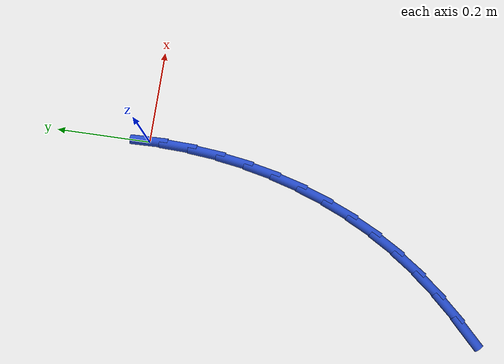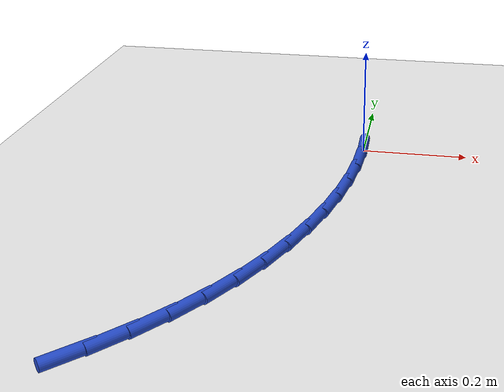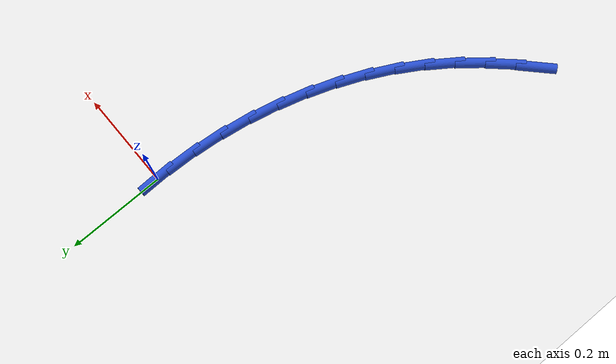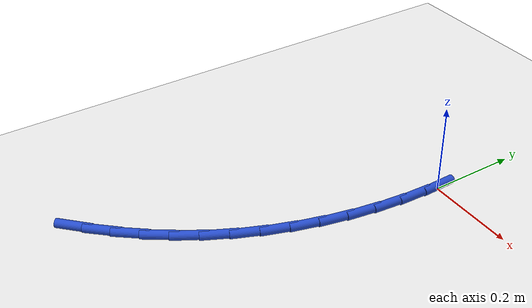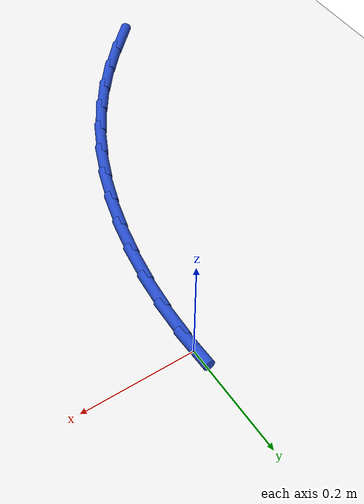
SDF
<sdf version="1.6">
 <world name="default">
  <model name="ground_plane">
   <static>1</static>
   <link name="link">
    <collision name="collision">
     <geometry><plane><normal>0 0 1</normal><size>100 100</size></plane></geometry>
     <surface><friction><ode><mu>100</mu><mu2>50</mu2></ode></friction></surface>
    </collision>
    <visual name="visual">
     <cast_shadows>0</cast_shadows>
     <geometry><plane><normal>0 0 1</normal><size>100 100</size></plane></geometry>
     <material>
      <script><uri>file://media/materials/scripts/gazebo.material</uri><name>Gazebo/WhiteGlow</name></script>
     </material>
    </visual>
   </link>
  </model>
  <model name="line">
   <link name="link_0">
    <pose>-1.3877787807814457e-17 8.326672684688674e-17 0.01 0 1.57 -1.5485615625019138</pose>
    <collision name="collision">
     <geometry><cylinder><radius>0.01</radius><length>0.08</length></cylinder></geometry>
    </collision>
    <visual name="visual">
     <material>
      <script><name>Gazebo/Blue</name><uri>file://media/materials/scripts/gazebo.material</uri></script>
     </material>
     <geometry><cylinder><radius>0.01</radius><length>0.08</length></cylinder></geometry>
    </visual>
   </link>
   <link name="link_97">
    <pose>-0.30045868870790027 -0.7025492755957794 0.01 0 1.57 0.771179600568469</pose>
    <collision name="collision">
     <geometry><cylinder><radius>0.01</radius><length>0.08</length></cylinder></geometry>
    </collision>
    <visual name="visual">
     <material>
      <script><name>Gazebo/Blue</name><uri>file://media/materials/scripts/gazebo.material</uri></script>
     </material>
     <geometry><cylinder><radius>0.01</radius><length>0.08</length></cylinder></geometry>
    </visual>
   </link>
   <link name="link_98">
    <pose>-0.25764126849017915 -0.6609324696373565 0.01 0 1.57 0.8292228284273512</pose>
    <collision name="collision">
     <geometry><cylinder><radius>0.01</radius><length>0.08</length></cylinder></geometry>
    </collision>
    <visual name="visual">
     <material>
      <script><name>Gazebo/Blue</name><uri>file://media/materials/scripts/gazebo.material</uri></script>
     </material>
     <geometry><cylinder><radius>0.01</radius><length>0.08</length></cylinder></geometry>
    </visual>
   </link>
   <link name="link_99">
    <pose>-0.21754674251556816 -0.6171601525327214 0.01 0 1.57 0.8936201381334876</pose>
    <collision name="collision">
     <geometry><cylinder><radius>0.01</radius><length>0.08</length></cylinder></geometry>
    </collision>
    <visual name="visual">
     <material>
      <script><name>Gazebo/Blue</name><uri>file://media/materials/scripts/gazebo.material</uri></script>
     </material>
     <geometry><cylinder><radius>0.01</radius><length>0.08</length></cylinder></geometry>
    </visual>
   </link>
   <link name="link_100">
    <pose>-0.1804605179011166 -0.5710330997433906 0.01 0 1.57 0.963929544307104</pose>
    <collision name="collision">
     <geometry><cylinder><radius>0.01</radius><length>0.08</length></cylinder></geometry>
    </collision>
    <visual name="visual">
     <material>
      <script><name>Gazebo/Blue</name><uri>file://media/materials/scripts/gazebo.material</uri></script>
     </material>
     <geometry><cylinder><radius>0.01</radius><length>0.08</length></cylinder></geometry>
    </visual>
   </link>
   <link name="link_101">
    <pose>-0.14666568398035693 -0.5223559805261405 0.01 0 1.57 1.0363469562477186</pose>
    <collision name="collision">
     <geometry><cylinder><radius>0.01</radius><length>0.08</length></cylinder></geometry>
    </collision>
    <visual name="visual">
     <material>
      <script><name>Gazebo/Blue</name><uri>file://media/materials/scripts/gazebo.material</uri></script>
     </material>
     <geometry><cylinder><radius>0.01</radius><length>0.08</length></cylinder></geometry>
    </visual>
   </link>
   <link name="link_102">
    <pose>-0.11633646332037781 -0.47111635649830297 0.01 0 1.57 1.1061892917950138</pose>
    <collision name="collision">
     <geometry><cylinder><radius>0.01</radius><length>0.08</length></cylinder></geometry>
    </collision>
    <visual name="visual">
     <material>
      <script><name>Gazebo/Blue</name><uri>file://media/materials/scripts/gazebo.material</uri></script>
     </material>
     <geometry><cylinder><radius>0.01</radius><length>0.08</length></cylinder></geometry>
    </visual>
   </link>
   <link name="link_103">
    <pose>-0.08949372945866947 -0.4175594102843318 0.01 0 1.57 1.1733082896835414</pose>
    <collision name="collision">
     <geometry><cylinder><radius>0.01</radius><length>0.08</length></cylinder></geometry>
    </collision>
    <visual name="visual">
     <material>
      <script><name>Gazebo/Blue</name><uri>file://media/materials/scripts/gazebo.material</uri></script>
     </material>
     <geometry><cylinder><radius>0.01</radius><length>0.08</length></cylinder></geometry>
    </visual>
   </link>
   <link name="link_104">
    <pose>-0.06614681307644217 -0.36194971610357407 0.01 0 1.57 1.2379678668690068</pose>
    <collision name="collision">
     <geometry><cylinder><radius>0.01</radius><length>0.08</length></cylinder></geometry>
    </collision>
    <visual name="visual">
     <material>
      <script><name>Gazebo/Blue</name><uri>file://media/materials/scripts/gazebo.material</uri></script>
     </material>
     <geometry><cylinder><radius>0.01</radius><length>0.08</length></cylinder></geometry>
    </visual>
   </link>
   <link name="link_105">
    <pose>-0.04630504485490741 -0.3045518481753785 0.01 0 1.57 1.3004764367272006</pose>
    <collision name="collision">
     <geometry><cylinder><radius>0.01</radius><length>0.08</length></cylinder></geometry>
    </collision>
    <visual name="visual">
     <material>
      <script><name>Gazebo/Blue</name><uri>file://media/materials/scripts/gazebo.material</uri></script>
     </material>
     <geometry><cylinder><radius>0.01</radius><length>0.08</length></cylinder></geometry>
    </visual>
   </link>
   <link name="link_106">
    <pose>-0.029977755475275685 -0.24563038071909193 0.01 0 1.57 1.36117047521889</pose>
    <collision name="collision">
     <geometry><cylinder><radius>0.01</radius><length>0.08</length></cylinder></geometry>
    </collision>
    <visual name="visual">
     <material>
      <script><name>Gazebo/Blue</name><uri>file://media/materials/scripts/gazebo.material</uri></script>
     </material>
     <geometry><cylinder><radius>0.01</radius><length>0.08</length></cylinder></geometry>
    </visual>
   </link>
   <link name="link_107">
    <pose>-0.01717427561875827 -0.18544988795406356 0.01 0 1.57 1.4204023871946612</pose>
    <collision name="collision">
     <geometry><cylinder><radius>0.01</radius><length>0.08</length></cylinder></geometry>
    </collision>
    <visual name="visual">
     <material>
      <script><name>Gazebo/Blue</name><uri>file://media/materials/scripts/gazebo.material</uri></script>
     </material>
     <geometry><cylinder><radius>0.01</radius><length>0.08</length></cylinder></geometry>
    </visual>
   </link>
   <link name="link_108">
    <pose>-0.007903935966565821 -0.12427494409963966 0.01 0 1.57 1.4785320047414856</pose>
    <collision name="collision">
     <geometry><cylinder><radius>0.01</radius><length>0.08</length></cylinder></geometry>
    </collision>
    <visual name="visual">
     <material>
      <script><name>Gazebo/Blue</name><uri>file://media/materials/scripts/gazebo.material</uri></script>
     </material>
     <geometry><cylinder><radius>0.01</radius><length>0.08</length></cylinder></geometry>
    </visual>
   </link>
   <link name="link_109">
    <pose>-0.0021760671999094747 -0.0623701233751696 0.01 0 1.57 1.5359208966426847</pose>
    <collision name="collision">
     <geometry><cylinder><radius>0.01</radius><length>0.08</length></cylinder></geometry>
    </collision>
    <visual name="visual">
     <material>
      <script><name>Gazebo/Blue</name><uri>file://media/materials/scripts/gazebo.material</uri></script>
     </material>
     <geometry><cylinder><radius>0.01</radius><length>0.08</length></cylinder></geometry>
    </visual>
   </link>
  </model>
 </world>
</sdf>
